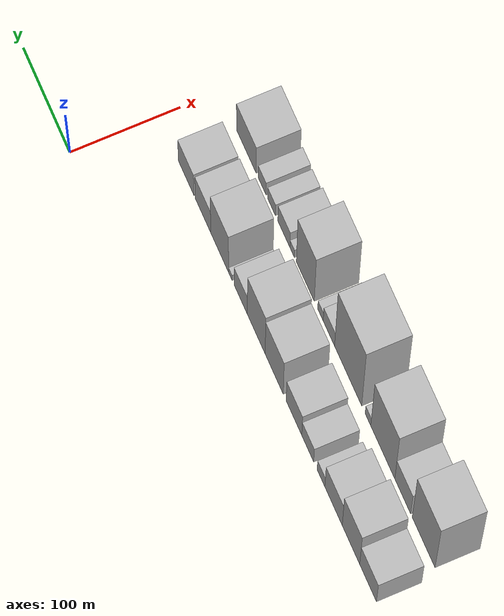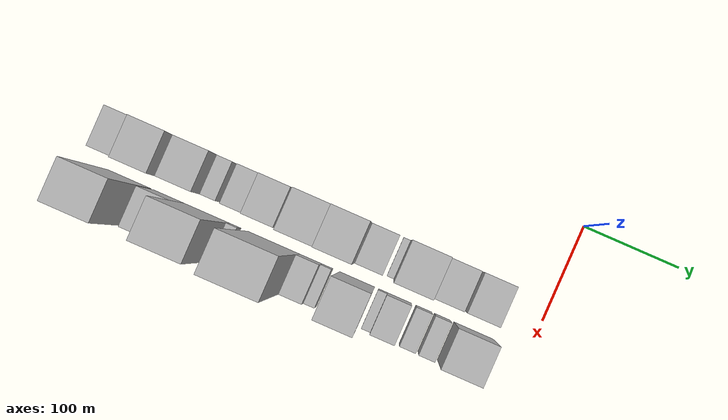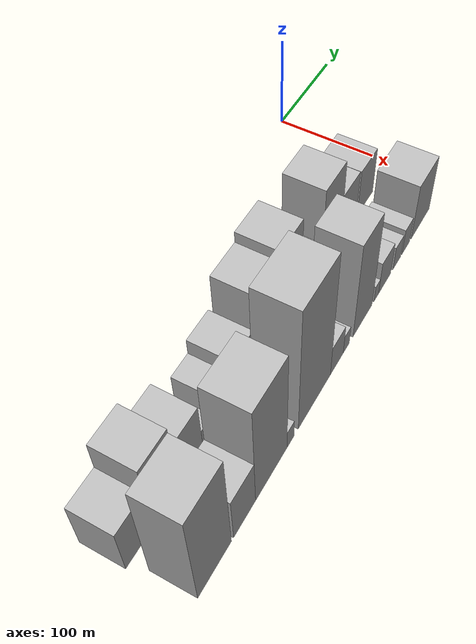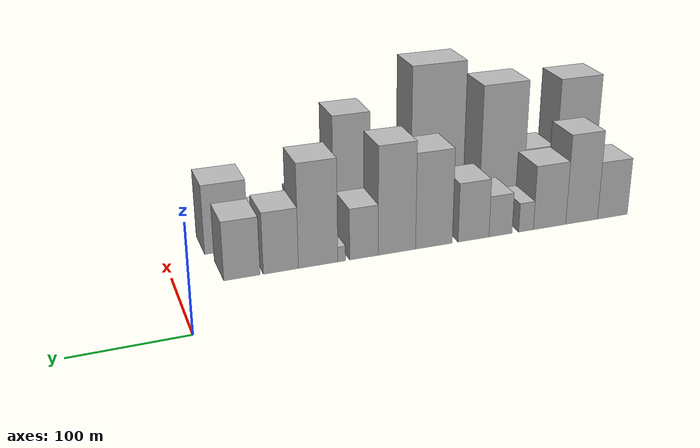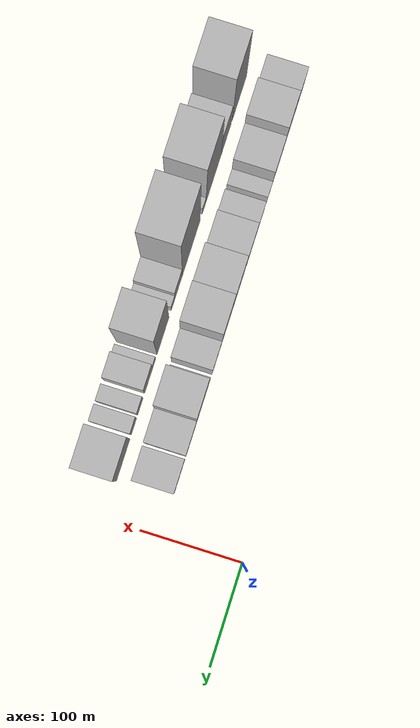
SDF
<sdf version="1.6">
 <world name="default">
  <model name="building_1">
   <static>1</static>
   <pose>100.0000 -433.1233 0 0.000000 0.000000 0.000000</pose>
   <link name="link">
    <pose>0 0 30.00 0 0 0</pose>
    <collision name="collision"><geometry><box><size>40.0000 33.7534 60.0000</size></box></geometry></collision>
    <visual name="visual">
     <cast_shadows>0</cast_shadows>
     <geometry><box><size>40.0000 33.7534 60.0000</size></box></geometry>
     <material>
      <script>
       <uri>model://HANNAS_wall/materials/scripts</uri>
       <uri>model://HANNAS_wall/materials/textures</uri>
       <name>vrc/HANNAS_wall</name>
      </script>
     </material>
    </visual>
   </link>
  </model>
  <model name="building_2">
   <static>1</static>
   <pose>100.0000 -398.6063 0 0.000000 0.000000 0.000000</pose>
   <link name="link">
    <pose>0 0 46.50 0 0 0</pose>
    <collision name="collision"><geometry><box><size>40.0000 35.2806 93.0000</size></box></geometry></collision>
    <visual name="visual">
     <cast_shadows>0</cast_shadows>
     <geometry><box><size>40.0000 35.2806 93.0000</size></box></geometry>
     <material>
      <script>
       <uri>model://HANNAS_wall/materials/scripts</uri>
       <uri>model://HANNAS_wall/materials/textures</uri>
       <name>vrc/HANNAS_wall</name>
      </script>
     </material>
    </visual>
   </link>
  </model>
  <model name="building_3">
   <static>1</static>
   <pose>100.0000 -363.3893 0 0.000000 0.000000 0.000000</pose>
   <link name="link">
    <pose>0 0 33.00 0 0 0</pose>
    <collision name="collision"><geometry><box><size>40.0000 35.1533 66.0000</size></box></geometry></collision>
    <visual name="visual">
     <cast_shadows>0</cast_shadows>
     <geometry><box><size>40.0000 35.1533 66.0000</size></box></geometry>
     <material>
      <script>
       <uri>model://HANNAS_wall/materials/scripts</uri>
       <uri>model://HANNAS_wall/materials/textures</uri>
       <name>vrc/HANNAS_wall</name>
      </script>
     </material>
    </visual>
   </link>
  </model>
  <model name="building_4">
   <static>1</static>
   <pose>100.0000 -337.9470 0 0.000000 0.000000 0.000000</pose>
   <link name="link">
    <pose>0 0 15.00 0 0 0</pose>
    <collision name="collision"><geometry><box><size>40.0000 15.7314 30.0000</size></box></geometry></collision>
    <visual name="visual">
     <cast_shadows>0</cast_shadows>
     <geometry><box><size>40.0000 15.7314 30.0000</size></box></geometry>
     <material>
      <script>
       <uri>model://HANNAS_wall/materials/scripts</uri>
       <uri>model://HANNAS_wall/materials/textures</uri>
       <name>vrc/HANNAS_wall</name>
      </script>
     </material>
    </visual>
   </link>
  </model>
  <model name="building_5">
   <static>1</static>
   <pose>100.0000 -310.8924 0 0.000000 0.000000 0.000000</pose>
   <link name="link">
    <pose>0 0 21.00 0 0 0</pose>
    <collision name="collision"><geometry><box><size>40.0000 24.3778 42.0000</size></box></geometry></collision>
    <visual name="visual">
     <cast_shadows>0</cast_shadows>
     <geometry><box><size>40.0000 24.3778 42.0000</size></box></geometry>
     <material>
      <script>
       <uri>model://HANNAS_wall/materials/scripts</uri>
       <uri>model://HANNAS_wall/materials/textures</uri>
       <name>vrc/HANNAS_wall</name>
      </script>
     </material>
    </visual>
   </link>
  </model>
  <model name="building_6">
   <static>1</static>
   <pose>100.0000 -282.7242 0 0.000000 0.000000 0.000000</pose>
   <link name="link">
    <pose>0 0 30.00 0 0 0</pose>
    <collision name="collision"><geometry><box><size>40.0000 31.9586 60.0000</size></box></geometry></collision>
    <visual name="visual">
     <cast_shadows>0</cast_shadows>
     <geometry><box><size>40.0000 31.9586 60.0000</size></box></geometry>
     <material>
      <script>
       <uri>model://HANNAS_wall/materials/scripts</uri>
       <uri>model://HANNAS_wall/materials/textures</uri>
       <name>vrc/HANNAS_wall</name>
      </script>
     </material>
    </visual>
   </link>
  </model>
  <model name="building_7">
   <static>1</static>
   <pose>100.0000 -242.1559 0 0.000000 0.000000 0.000000</pose>
   <link name="link">
    <pose>0 0 48.00 0 0 0</pose>
    <collision name="collision"><geometry><box><size>40.0000 37.1780 96.0000</size></box></geometry></collision>
    <visual name="visual">
     <cast_shadows>0</cast_shadows>
     <geometry><box><size>40.0000 37.1780 96.0000</size></box></geometry>
     <material>
      <script>
       <uri>model://HANNAS_wall/materials/scripts</uri>
       <uri>model://HANNAS_wall/materials/textures</uri>
       <name>vrc/HANNAS_wall</name>
      </script>
     </material>
    </visual>
   </link>
  </model>
  <model name="building_8">
   <static>1</static>
   <pose>100.0000 -205.1618 0 0.000000 0.000000 0.000000</pose>
   <link name="link">
    <pose>0 0 54.00 0 0 0</pose>
    <collision name="collision"><geometry><box><size>40.0000 36.8103 108.0000</size></box></geometry></collision>
    <visual name="visual">
     <cast_shadows>0</cast_shadows>
     <geometry><box><size>40.0000 36.8103 108.0000</size></box></geometry>
     <material>
      <script>
       <uri>model://HANNAS_wall/materials/scripts</uri>
       <uri>model://HANNAS_wall/materials/textures</uri>
       <name>vrc/HANNAS_wall</name>
      </script>
     </material>
    </visual>
   </link>
  </model>
  <model name="building_9">
   <static>1</static>
   <pose>100.0000 -172.9309 0 0.000000 0.000000 0.000000</pose>
   <link name="link">
    <pose>0 0 25.50 0 0 0</pose>
    <collision name="collision"><geometry><box><size>40.0000 27.6515 51.0000</size></box></geometry></collision>
    <visual name="visual">
     <cast_shadows>0</cast_shadows>
     <geometry><box><size>40.0000 27.6515 51.0000</size></box></geometry>
     <material>
      <script>
       <uri>model://HANNAS_wall/materials/scripts</uri>
       <uri>model://HANNAS_wall/materials/textures</uri>
       <name>vrc/HANNAS_wall</name>
      </script>
     </material>
    </visual>
   </link>
  </model>
  <model name="building_10">
   <static>1</static>
   <pose>100.0000 -151.4823 0 0.000000 0.000000 0.000000</pose>
   <link name="link">
    <pose>0 0 7.50 0 0 0</pose>
    <collision name="collision"><geometry><box><size>40.0000 7.2456 15.0000</size></box></geometry></collision>
    <visual name="visual">
     <cast_shadows>0</cast_shadows>
     <geometry><box><size>40.0000 7.2456 15.0000</size></box></geometry>
     <material>
      <script>
       <uri>model://HANNAS_wall/materials/scripts</uri>
       <uri>model://HANNAS_wall/materials/textures</uri>
       <name>vrc/HANNAS_wall</name>
      </script>
     </material>
    </visual>
   </link>
  </model>
  <model name="building_11">
   <static>1</static>
   <pose>100.0000 -129.2783 0 0.000000 0.000000 0.000000</pose>
   <link name="link">
    <pose>0 0 51.00 0 0 0</pose>
    <collision name="collision"><geometry><box><size>40.0000 37.1625 102.0000</size></box></geometry></collision>
    <visual name="visual">
     <cast_shadows>0</cast_shadows>
     <geometry><box><size>40.0000 37.1625 102.0000</size></box></geometry>
     <material>
      <script>
       <uri>model://HANNAS_wall/materials/scripts</uri>
       <uri>model://HANNAS_wall/materials/textures</uri>
       <name>vrc/HANNAS_wall</name>
      </script>
     </material>
    </visual>
   </link>
  </model>
  <model name="building_12">
   <static>1</static>
   <pose>100.0000 -94.5166 0 0.000000 0.000000 0.000000</pose>
   <link name="link">
    <pose>0 0 30.00 0 0 0</pose>
    <collision name="collision"><geometry><box><size>40.0000 32.3609 60.0000</size></box></geometry></collision>
    <visual name="visual">
     <cast_shadows>0</cast_shadows>
     <geometry><box><size>40.0000 32.3609 60.0000</size></box></geometry>
     <material>
      <script>
       <uri>model://HANNAS_wall/materials/scripts</uri>
       <uri>model://HANNAS_wall/materials/textures</uri>
       <name>vrc/HANNAS_wall</name>
      </script>
     </material>
    </visual>
   </link>
  </model>
  <model name="building_13">
   <static>1</static>
   <pose>100.0000 -58.9666 0 0.000000 0.000000 0.000000</pose>
   <link name="link">
    <pose>0 0 28.50 0 0 0</pose>
    <collision name="collision"><geometry><box><size>40.0000 32.7391 57.0000</size></box></geometry></collision>
    <visual name="visual">
     <cast_shadows>0</cast_shadows>
     <geometry><box><size>40.0000 32.7391 57.0000</size></box></geometry>
     <material>
      <script>
       <uri>model://HANNAS_wall/materials/scripts</uri>
       <uri>model://HANNAS_wall/materials/textures</uri>
       <name>vrc/HANNAS_wall</name>
      </script>
     </material>
    </visual>
   </link>
  </model>
  <model name="building_26">
   <static>1</static>
   <pose>155.0000 -420.0903 0 0.000000 0.000000 0.000000</pose>
   <link name="link">
    <pose>0 0 64.50 0 0 0</pose>
    <collision name="collision"><geometry><box><size>40.0000 45.8193 129.0000</size></box></geometry></collision>
    <visual name="visual">
     <cast_shadows>0</cast_shadows>
     <geometry><box><size>40.0000 45.8193 129.0000</size></box></geometry>
     <material>
      <script>
       <uri>model://HANNAS_wall/materials/scripts</uri>
       <uri>model://HANNAS_wall/materials/textures</uri>
       <name>vrc/HANNAS_wall</name>
      </script>
     </material>
    </visual>
   </link>
  </model>
  <model name="building_27">
   <static>1</static>
   <pose>155.0000 -378.2168 0 0.000000 0.000000 0.000000</pose>
   <link name="link">
    <pose>0 0 30.00 0 0 0</pose>
    <collision name="collision"><geometry><box><size>40.0000 31.9277 60.0000</size></box></geometry></collision>
    <visual name="visual">
     <cast_shadows>0</cast_shadows>
     <geometry><box><size>40.0000 31.9277 60.0000</size></box></geometry>
     <material>
      <script>
       <uri>model://HANNAS_wall/materials/scripts</uri>
       <uri>model://HANNAS_wall/materials/textures</uri>
       <name>vrc/HANNAS_wall</name>
      </script>
     </material>
    </visual>
   </link>
  </model>
  <model name="building_28">
   <static>1</static>
   <pose>155.0000 -337.9474 0 0.000000 0.000000 0.000000</pose>
   <link name="link">
    <pose>0 0 66.00 0 0 0</pose>
    <collision name="collision"><geometry><box><size>40.0000 48.6113 132.0000</size></box></geometry></collision>
    <visual name="visual">
     <cast_shadows>0</cast_shadows>
     <geometry><box><size>40.0000 48.6113 132.0000</size></box></geometry>
     <material>
      <script>
       <uri>model://HANNAS_wall/materials/scripts</uri>
       <uri>model://HANNAS_wall/materials/textures</uri>
       <name>vrc/HANNAS_wall</name>
      </script>
     </material>
    </visual>
   </link>
  </model>
  <model name="building_29">
   <static>1</static>
   <pose>155.0000 -307.9744 0 0.000000 0.000000 0.000000</pose>
   <link name="link">
    <pose>0 0 12.00 0 0 0</pose>
    <collision name="collision"><geometry><box><size>40.0000 11.3347 24.0000</size></box></geometry></collision>
    <visual name="visual">
     <cast_shadows>0</cast_shadows>
     <geometry><box><size>40.0000 11.3347 24.0000</size></box></geometry>
     <material>
      <script>
       <uri>model://HANNAS_wall/materials/scripts</uri>
       <uri>model://HANNAS_wall/materials/textures</uri>
       <name>vrc/HANNAS_wall</name>
      </script>
     </material>
    </visual>
   </link>
  </model>
  <model name="building_30">
   <static>1</static>
   <pose>155.0000 -267.6621 0 0.000000 0.000000 0.000000</pose>
   <link name="link">
    <pose>0 0 79.50 0 0 0</pose>
    <collision name="collision"><geometry><box><size>40.0000 55.2898 159.0000</size></box></geometry></collision>
    <visual name="visual">
     <cast_shadows>0</cast_shadows>
     <geometry><box><size>40.0000 55.2898 159.0000</size></box></geometry>
     <material>
      <script>
       <uri>model://HANNAS_wall/materials/scripts</uri>
       <uri>model://HANNAS_wall/materials/textures</uri>
       <name>vrc/HANNAS_wall</name>
      </script>
     </material>
    </visual>
   </link>
  </model>
  <model name="building_31">
   <static>1</static>
   <pose>155.0000 -228.3386 0 0.000000 0.000000 0.000000</pose>
   <link name="link">
    <pose>0 0 19.50 0 0 0</pose>
    <collision name="collision"><geometry><box><size>40.0000 23.3573 39.0000</size></box></geometry></collision>
    <visual name="visual">
     <cast_shadows>0</cast_shadows>
     <geometry><box><size>40.0000 23.3573 39.0000</size></box></geometry>
     <material>
      <script>
       <uri>model://HANNAS_wall/materials/scripts</uri>
       <uri>model://HANNAS_wall/materials/textures</uri>
       <name>vrc/HANNAS_wall</name>
      </script>
     </material>
    </visual>
   </link>
  </model>
  <model name="building_32">
   <static>1</static>
   <pose>155.0000 -210.9783 0 0.000000 0.000000 0.000000</pose>
   <link name="link">
    <pose>0 0 12.00 0 0 0</pose>
    <collision name="collision"><geometry><box><size>40.0000 11.3632 24.0000</size></box></geometry></collision>
    <visual name="visual">
     <cast_shadows>0</cast_shadows>
     <geometry><box><size>40.0000 11.3632 24.0000</size></box></geometry>
     <material>
      <script>
       <uri>model://HANNAS_wall/materials/scripts</uri>
       <uri>model://HANNAS_wall/materials/textures</uri>
       <name>vrc/HANNAS_wall</name>
      </script>
     </material>
    </visual>
   </link>
  </model>
  <model name="building_33">
   <static>1</static>
   <pose>155.0000 -179.8417 0 0.000000 0.000000 0.000000</pose>
   <link name="link">
    <pose>0 0 60.00 0 0 0</pose>
    <collision name="collision"><geometry><box><size>40.0000 36.9101 120.0000</size></box></geometry></collision>
    <visual name="visual">
     <cast_shadows>0</cast_shadows>
     <geometry><box><size>40.0000 36.9101 120.0000</size></box></geometry>
     <material>
      <script>
       <uri>model://HANNAS_wall/materials/scripts</uri>
       <uri>model://HANNAS_wall/materials/textures</uri>
       <name>vrc/HANNAS_wall</name>
      </script>
     </material>
    </visual>
   </link>
  </model>
  <model name="building_34">
   <static>1</static>
   <pose>155.0000 -152.7245 0 0.000000 0.000000 0.000000</pose>
   <link name="link">
    <pose>0 0 10.50 0 0 0</pose>
    <collision name="collision"><geometry><box><size>40.0000 9.3242 21.0000</size></box></geometry></collision>
    <visual name="visual">
     <cast_shadows>0</cast_shadows>
     <geometry><box><size>40.0000 9.3242 21.0000</size></box></geometry>
     <material>
      <script>
       <uri>model://HANNAS_wall/materials/scripts</uri>
       <uri>model://HANNAS_wall/materials/textures</uri>
       <name>vrc/HANNAS_wall</name>
      </script>
     </material>
    </visual>
   </link>
  </model>
  <model name="building_35">
   <static>1</static>
   <pose>155.0000 -135.5541 0 0.000000 0.000000 0.000000</pose>
   <link name="link">
    <pose>0 0 21.00 0 0 0</pose>
    <collision name="collision"><geometry><box><size>40.0000 25.0165 42.0000</size></box></geometry></collision>
    <visual name="visual">
     <cast_shadows>0</cast_shadows>
     <geometry><box><size>40.0000 25.0165 42.0000</size></box></geometry>
     <material>
      <script>
       <uri>model://HANNAS_wall/materials/scripts</uri>
       <uri>model://HANNAS_wall/materials/textures</uri>
       <name>vrc/HANNAS_wall</name>
      </script>
     </material>
    </visual>
   </link>
  </model>
  <model name="building_36">
   <static>1</static>
   <pose>155.0000 -109.7910 0 0.000000 0.000000 0.000000</pose>
   <link name="link">
    <pose>0 0 15.00 0 0 0</pose>
    <collision name="collision"><geometry><box><size>40.0000 16.5097 30.0000</size></box></geometry></collision>
    <visual name="visual">
     <cast_shadows>0</cast_shadows>
     <geometry><box><size>40.0000 16.5097 30.0000</size></box></geometry>
     <material>
      <script>
       <uri>model://HANNAS_wall/materials/scripts</uri>
       <uri>model://HANNAS_wall/materials/textures</uri>
       <name>vrc/HANNAS_wall</name>
      </script>
     </material>
    </visual>
   </link>
  </model>
  <model name="building_37">
   <static>1</static>
   <pose>155.0000 -90.2625 0 0.000000 0.000000 0.000000</pose>
   <link name="link">
    <pose>0 0 16.50 0 0 0</pose>
    <collision name="collision"><geometry><box><size>40.0000 16.5471 33.0000</size></box></geometry></collision>
    <visual name="visual">
     <cast_shadows>0</cast_shadows>
     <geometry><box><size>40.0000 16.5471 33.0000</size></box></geometry>
     <material>
      <script>
       <uri>model://HANNAS_wall/materials/scripts</uri>
       <uri>model://HANNAS_wall/materials/textures</uri>
       <name>vrc/HANNAS_wall</name>
      </script>
     </material>
    </visual>
   </link>
  </model>
  <model name="building_38">
   <static>1</static>
   <pose>155.0000 -57.4180 0 0.000000 0.000000 0.000000</pose>
   <link name="link">
    <pose>0 0 34.50 0 0 0</pose>
    <collision name="collision"><geometry><box><size>40.0000 41.1419 69.0000</size></box></geometry></collision>
    <visual name="visual">
     <cast_shadows>0</cast_shadows>
     <geometry><box><size>40.0000 41.1419 69.0000</size></box></geometry>
     <material>
      <script>
       <uri>model://HANNAS_wall/materials/scripts</uri>
       <uri>model://HANNAS_wall/materials/textures</uri>
       <name>vrc/HANNAS_wall</name>
      </script>
     </material>
    </visual>
   </link>
  </model>
 </world>
</sdf>
